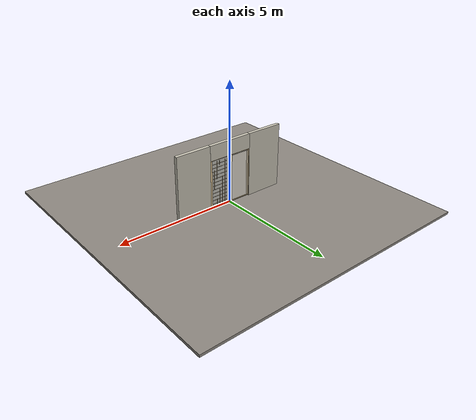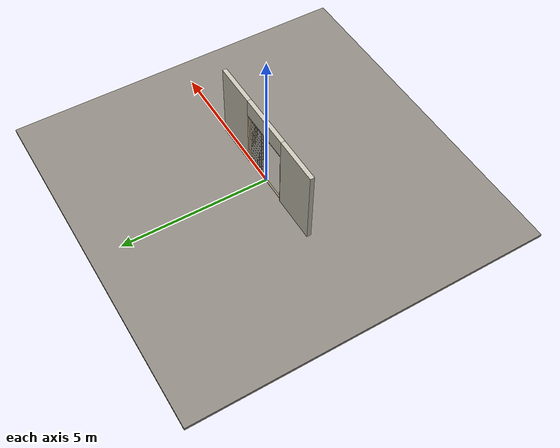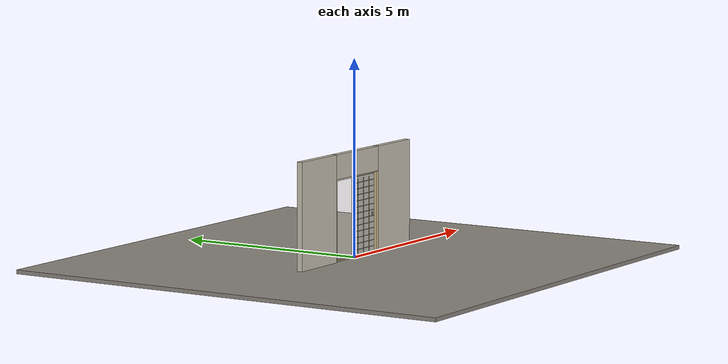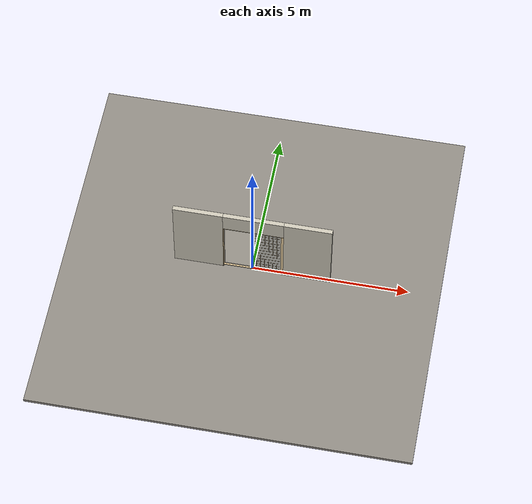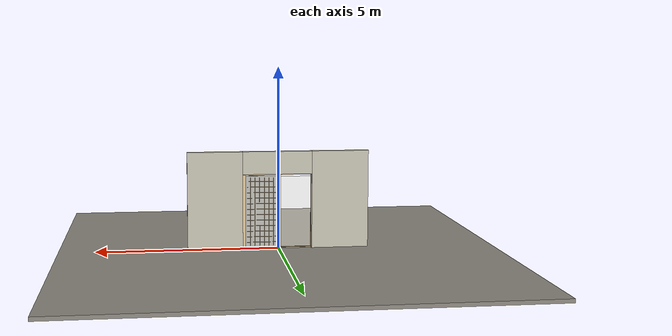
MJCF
<?xml version="1.0" ?>
<mujoco model="db0271_sliding_single_simple">
  <compiler angle="radian" meshdir="../../hardware" texturedir="../../textures" autolimits="true" inertiafromgeom="false"/>
  <option timestep="0.002" integrator="implicitfast" cone="elliptic" impratio="10" noslip_iterations="3">
    <flag multiccd="enable"/>
  </option>
  <size memory="16M"/>
  <default>
    <geom condim="4" solref="0.005 1" solimp="0.95 0.99 0.001"/>
    <joint solreflimit="0.005 1" solimplimit="0.95 0.99 0.001"/>
    <tendon solreflimit="0.005 1"/>
    <equality solref="0.002 1"/>
  </default>
  <visual>
    <headlight ambient="0.4 0.4 0.4" diffuse="0.7 0.7 0.7" specular="0.2 0.2 0.2"/>
    <quality shadowsize="4096"/>
    <map znear="0.01" zfar="60"/>
  </visual>
  <asset>
    <material name="mat_floor" rgba="0.55 0.53 0.5 1" specular="0.2" shininess="0.15" reflectance="0"/>
    <material name="mat_wall" rgba="0.78 0.76 0.7 1" specular="0.2" shininess="0.1" reflectance="0"/>
    <material name="mat_frame" rgba="0.88 0.78 0.6 1" specular="0.2" shininess="0.4" reflectance="0"/>
    <material name="mat_track" rgba="0.8 0.81 0.83 1" specular="0.8" shininess="0.6" reflectance="0.4"/>
    <material name="mat_fixed_glass" rgba="0.85 0.92 0.95 0.25" specular="0.2" shininess="0.95" reflectance="0.1"/>
    <material name="mat_fixed_shoji" rgba="0.98 0.96 0.9 0.45" specular="0.2" shininess="0.1" reflectance="0.1"/>
    <material name="mat_shikii" rgba="0.88 0.78 0.6 1" specular="0.2" shininess="0.4" reflectance="0"/>
    <material name="mat_leaf" rgba="0.74 0.73 0.7 1" specular="0.2" shininess="0.1" reflectance="0"/>
    <material name="mat_kumiko" rgba="0.88 0.78 0.6 1" specular="0.2" shininess="0.4" reflectance="0"/>
    <material name="mat_roller" rgba="0.65 0.66 0.68 1" specular="0.74" shininess="0.5" reflectance="0.36"/>
    <material name="mat_op_nickel_satin" rgba="0.72 0.7 0.66 1" specular="0.8" shininess="0.65" reflectance="0.4"/>
    <material name="mat_hook" rgba="0.75 0.76 0.77 1" specular="0.8" shininess="0.65" reflectance="0.4"/>
    <texture name="skybox" type="skybox" builtin="gradient" rgb1="0.6 0.7 0.85" rgb2="0.9 0.92 0.95" width="256" height="256"/>
  </asset>
  <worldbody>
    <light name="sun" pos="1.5 -2.5 4" dir="-0.3 0.5 -0.8" directional="true" diffuse="0.8 0.8 0.8" specular="0.3 0.3 0.3" castshadow="true"/>
    <light name="fill" pos="-1.5 2.5 3" dir="0.3 -0.5 -0.7" directional="true" diffuse="0.35 0.35 0.4" castshadow="false"/>
    <camera name="robot_view" pos="0 -2.55625 1.74575" xyaxes="1 0 0 0 0.26963 0.962964" fovy="52"/>
    <camera name="far_view" pos="0 2.55625 1.74575" xyaxes="-1 0 0 0 -0.26963 0.962964" fovy="52"/>
    <camera name="iso" pos="1.94275 -2.14725 2.15475" xyaxes="0.741536 0.670913 0 -0.242917 0.268487 0.932151" fovy="46"/>
    <camera name="detail_handle" pos="0.995 -0.815 1.28" xyaxes="0.97561 0.219512 0 -0.070934 0.315262 0.94635" fovy="38"/>
    <geom name="floor" type="box" size="6 6 0.05" pos="0 0 -0.05" material="mat_floor" group="0" contype="1" conaffinity="1" friction="0.8 0.005 0.0001" density="2400"/>
    <geom name="wall_left" type="box" size="0.7855 0.0725 1.35" pos="-1.7145 0 1.35" material="mat_wall" group="0" contype="1" conaffinity="1" friction="0.6 0.005 0.0001" density="800"/>
    <geom name="wall_right" type="box" size="0.7555 0.0725 1.35" pos="1.7445 0 1.35" material="mat_wall" group="0" contype="1" conaffinity="1" friction="0.6 0.005 0.0001" density="800"/>
    <geom name="wall_header" type="box" size="0.959 0.0725 0.3105" pos="0.03 0 2.3895" material="mat_wall" group="0" contype="1" conaffinity="1" friction="0.6 0.005 0.0001" density="800"/>
    <geom name="jamb_l" type="box" size="0.0095 0.0725 1.03" pos="-0.9195 0 1.03" material="mat_frame" group="0" contype="1" conaffinity="1" friction="0.6 0.005 0.0001" density="300"/>
    <geom name="jamb_head" type="box" size="0.929 0.0725 0.0095" pos="0 0 2.0695" material="mat_frame" group="0" contype="1" conaffinity="1" friction="0.6 0.005 0.0001" density="300"/>
    <geom name="fixed_panel_glass" type="box" size="0.435 0.003 0.98" pos="-0.455 0.04 1.03" material="mat_fixed_shoji" group="0" contype="1" conaffinity="1" friction="0.6 0.005 0.0001" density="2500"/>
    <geom name="fixed_panel_stile" type="box" size="0.03 0.012 1.03" pos="-0.03 0.04 1.03" material="mat_frame" group="0" contype="1" conaffinity="1" friction="0.6 0.005 0.0001" density="1400"/>
    <geom name="shikii" type="box" size="0.95 0.025 0.012" pos="0.005 0 0.012" material="mat_shikii" group="0" contype="1" conaffinity="1" friction="0.6 0.005 0.0001" density="2700"/>
    <geom name="kamoi" type="box" size="0.95 0.025 0.03" pos="0.005 0 2.09" material="mat_shikii" group="0" contype="1" conaffinity="1" friction="0.6 0.005 0.0001" density="410"/>
    <geom name="jamb_latch_0" type="box" size="0.0395 0.0725 1.03" pos="0.9495 0 1.03" material="mat_frame" group="0" contype="1" conaffinity="1" friction="0.6 0.005 0.0001" density="300"/>
    <site name="approach_point" pos="0 -1.5 0" quat="1 0 0 0" size="0.05" rgba="0.2 0.9 0.2 0.5" group="4"/>
    <site name="goal_point" pos="0 1.5 0" quat="1 0 0 0" size="0.05" rgba="0.2 0.9 0.2 0.5" group="4"/>
    <site name="door_plane_center" pos="0 0 1.03" quat="1 0 0 0" size="0.02" rgba="0.2 0.9 0.2 0.5" group="4"/>
    <body name="leaf" pos="0.455 0 0">
      <inertial pos="0.000208 -0.000009 1.026984" mass="9.0704" quat="0.500007 0.499983 -0.500017 0.499994" diaginertia="0.613117275 3.022035072 3.633789671"/>
      <joint name="leaf_slide" type="slide" axis="-1 0 0" limited="true" range="0 0.9" damping="2.45352" frictionloss="34.690593" armature="0.5"/>
      <geom name="leaf_slab" type="box" size="0.45 0.015 1" pos="0 0 1.027" material="mat_leaf" group="0" contype="1" conaffinity="1" friction="0.3 0.005 0.0001" density="1"/>
      <geom name="leaf_kumiko_v1" type="box" size="0.006 0.017 0.95" pos="-0.321429 0 1.027" material="mat_kumiko" group="1" contype="0" conaffinity="0" density="1"/>
      <geom name="leaf_kumiko_v2" type="box" size="0.006 0.017 0.95" pos="-0.192857 0 1.027" material="mat_kumiko" group="1" contype="0" conaffinity="0" density="1"/>
      <geom name="leaf_kumiko_v3" type="box" size="0.006 0.017 0.95" pos="-0.064286 0 1.027" material="mat_kumiko" group="1" contype="0" conaffinity="0" density="1"/>
      <geom name="leaf_kumiko_v4" type="box" size="0.006 0.017 0.95" pos="0.064286 0 1.027" material="mat_kumiko" group="1" contype="0" conaffinity="0" density="1"/>
      <geom name="leaf_kumiko_v5" type="box" size="0.006 0.017 0.95" pos="0.192857 0 1.027" material="mat_kumiko" group="1" contype="0" conaffinity="0" density="1"/>
      <geom name="leaf_kumiko_v6" type="box" size="0.006 0.017 0.95" pos="0.321429 0 1.027" material="mat_kumiko" group="1" contype="0" conaffinity="0" density="1"/>
      <geom name="leaf_kumiko_h1" type="box" size="0.41 0.017 0.006" pos="0 0 0.180846" material="mat_kumiko" group="1" contype="0" conaffinity="0" density="1"/>
      <geom name="leaf_kumiko_h2" type="box" size="0.41 0.017 0.006" pos="0 0 0.334692" material="mat_kumiko" group="1" contype="0" conaffinity="0" density="1"/>
      <geom name="leaf_kumiko_h3" type="box" size="0.41 0.017 0.006" pos="0 0 0.488538" material="mat_kumiko" group="1" contype="0" conaffinity="0" density="1"/>
      <geom name="leaf_kumiko_h4" type="box" size="0.41 0.017 0.006" pos="0 0 0.642385" material="mat_kumiko" group="1" contype="0" conaffinity="0" density="1"/>
      <geom name="leaf_kumiko_h5" type="box" size="0.41 0.017 0.006" pos="0 0 0.796231" material="mat_kumiko" group="1" contype="0" conaffinity="0" density="1"/>
      <geom name="leaf_kumiko_h6" type="box" size="0.41 0.017 0.006" pos="0 0 0.950077" material="mat_kumiko" group="1" contype="0" conaffinity="0" density="1"/>
      <geom name="leaf_kumiko_h7" type="box" size="0.41 0.017 0.006" pos="0 0 1.103923" material="mat_kumiko" group="1" contype="0" conaffinity="0" density="1"/>
      <geom name="leaf_kumiko_h8" type="box" size="0.41 0.017 0.006" pos="0 0 1.257769" material="mat_kumiko" group="1" contype="0" conaffinity="0" density="1"/>
      <geom name="leaf_kumiko_h9" type="box" size="0.41 0.017 0.006" pos="0 0 1.411615" material="mat_kumiko" group="1" contype="0" conaffinity="0" density="1"/>
      <geom name="leaf_kumiko_h10" type="box" size="0.41 0.017 0.006" pos="0 0 1.565462" material="mat_kumiko" group="1" contype="0" conaffinity="0" density="1"/>
      <geom name="leaf_kumiko_h11" type="box" size="0.41 0.017 0.006" pos="0 0 1.719308" material="mat_kumiko" group="1" contype="0" conaffinity="0" density="1"/>
      <geom name="leaf_kumiko_h12" type="box" size="0.41 0.017 0.006" pos="0 0 1.873154" material="mat_kumiko" group="1" contype="0" conaffinity="0" density="1"/>
      <geom name="leaf_pull_n" type="box" size="0.025 0.0005 0.05" pos="0.36 -0.0155 1" material="mat_op_nickel_satin" group="1" contype="0" conaffinity="0" density="1000"/>
      <site name="leaf_pull_grip_n" pos="0.36 -0.015 1" quat="1 0 0 0" size="0.012" rgba="0.2 0.9 0.2 0.5" group="4"/>
      <site name="leaf_edge_mid" pos="0.45 0 1.027" quat="1 0 0 0" size="0.02" rgba="0.2 0.9 0.2 0.5" group="4"/>
    </body>
  </worldbody>
  <sensor>
    <jointpos name="leaf_slide_pos" joint="leaf_slide"/>
    <jointvel name="leaf_slide_vel" joint="leaf_slide"/>
  </sensor>
</mujoco>
